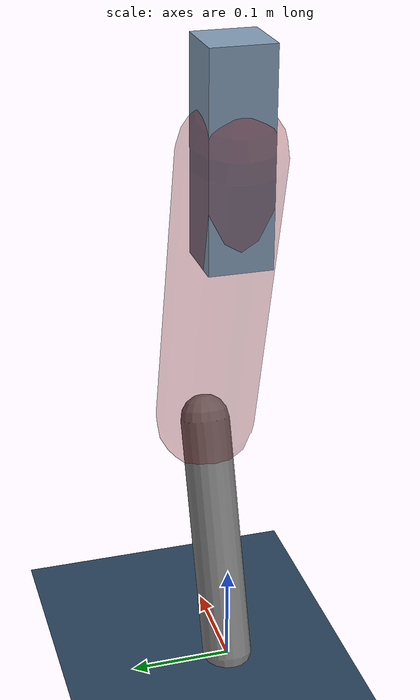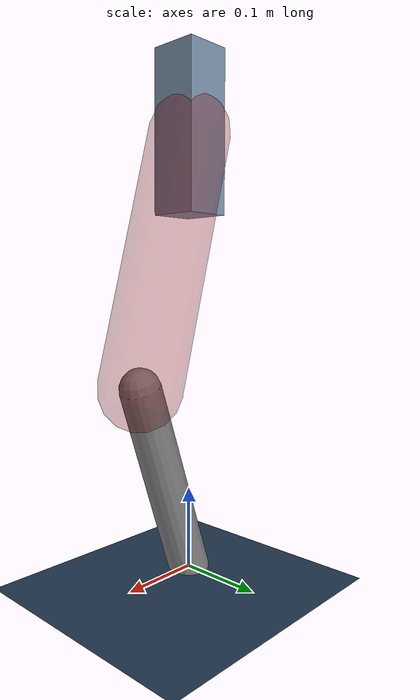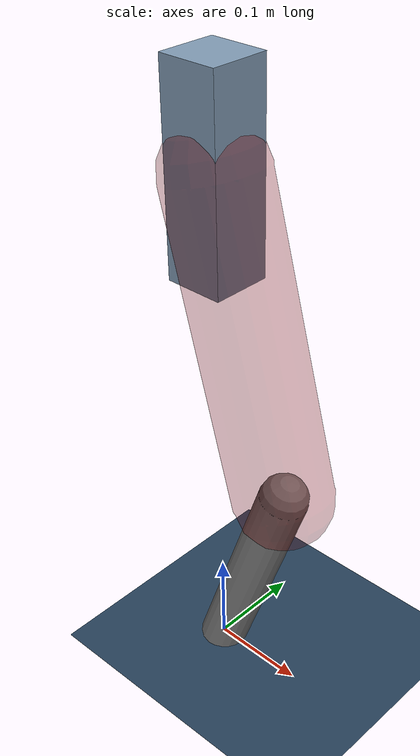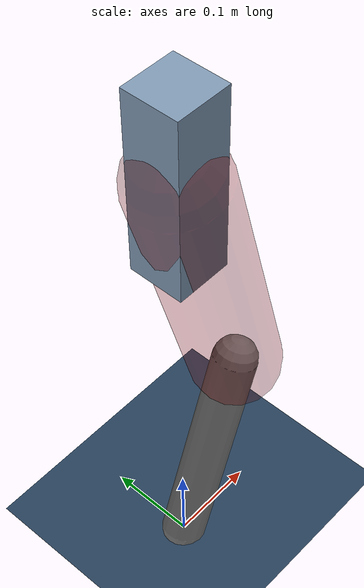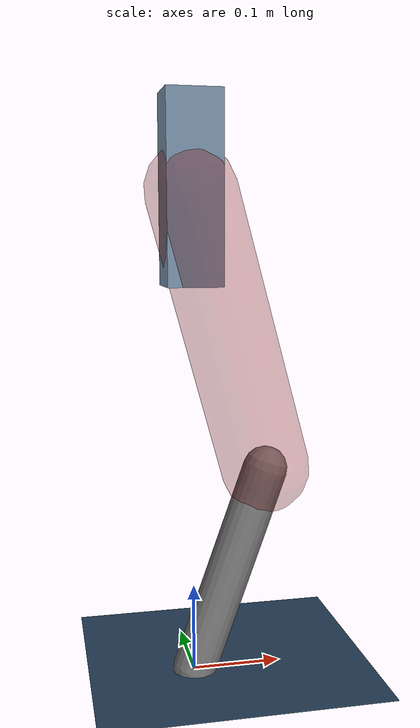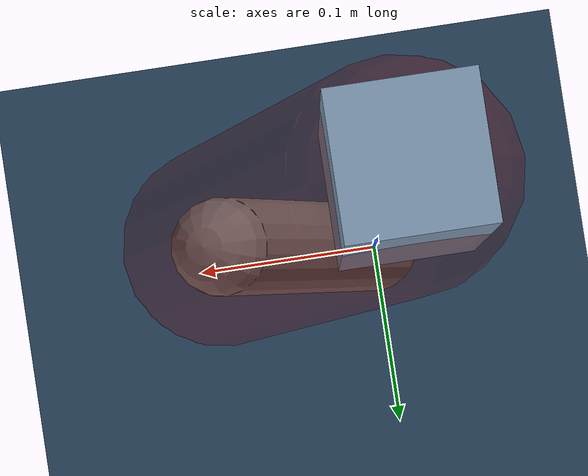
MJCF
<mujoco model="Hopper2D">
	<compiler inertiafromgeom="true" angle="radian" />
	<option timestep="0.001" integrator="implicit" cone="elliptic" solver="Newton" tolerance="1e-10" />

	<default>
		<geom contype="1" conaffinity="1" condim="3" friction="2 0.005 0.0001" solref="0.005 1" />
		<joint limited="true" damping="0.1" />
	</default>

	<asset>
		<texture name="skybox" type="skybox" builtin="gradient" rgb1=".4 .6 .8" rgb2="0 0 0" width="800" height="800" />
		<texture name="grid" type="2d" builtin="checker" rgb1=".1 .2 .3" rgb2=".2 .3 .4" width="300" height="300" mark="edge" markrgb=".2 .3 .4" />
		<material name="ground" texture="grid" texrepeat="1 1" texuniform="true" reflectance="0.1" />
		<material name="leg" rgba="0.5 0.6 0.7 1" />
	</asset>

	<worldbody>

		<geom name="floor" type="plane" size="5 5 0.25" material="ground" />

		<light directional="false" diffuse="0.8 0.8 0.8" specular="0.3 0.3 0.3" pos="0 0 2" dir="0 0 -1" />
		<light mode="targetbodycom" target="base" directional="false" diffuse="0.8 0.8 0.8" specular="0.3 0.3 0.3" pos="0 0 2" dir="0 0 -1" />

		<camera name="fixed" pos="0 -2 1" xyaxes="1 0 0 0 0 1" />
		<camera name="tracking" mode="trackcom" pos="0 -3 1" />

		<body name="root" pos="0 0 0.5395789147329151">
			<joint name="slide_x" type="slide" axis="1 0 0" range="-100 100" />
			<joint name="slide_z" type="slide" axis="0 0 1" range="0 10" />

			<body name="base" pos="0 0 0">
				<geom name="torso" type="box" size="0.03 0.03 0.1" mass="2.701" material="leg" />

				<body name="link1" pos="0 0 0" euler="0 1.3053757790368157 0">
					<joint type="hinge" axis="0 -1 0" pos="0 0 0" name="hinge1" limited="true" range="-3.14 3.14" stiffness="0" damping="0.1" />
					<geom name="thigh" type="capsule" fromto="0 0 0 0.3159716713930175 0 0" size="0.05" rgba="0.5 0 0 0.3" mass="1.032220679900449" />

					<body name="link2" pos="0.3159716713930175 0 0" euler="0 0.6049358932060203 0">
						<joint type="hinge" axis="0 -1 0" pos="0 0 0" name="hinge2" limited="true" range="-3.14 3.14" stiffness="0" damping="0.1" />
						<geom name="shank" type="capsule" fromto="0 0 0 0.24887880675595933 0 0" size="0.025" mass="0.44160304540476747" />

					</body>
				</body>
			</body>
		</body>
	</worldbody>

	<actuator>
		<motor name="torque1" joint="hinge1" ctrlrange="-86.48222933817844 86.48222933817844" ctrllimited="true" gear="1" />
		<motor name="torque2" joint="hinge2" ctrlrange="-141.74516238880372 141.74516238880372" ctrllimited="true" gear="1" />
	</actuator>
</mujoco>
